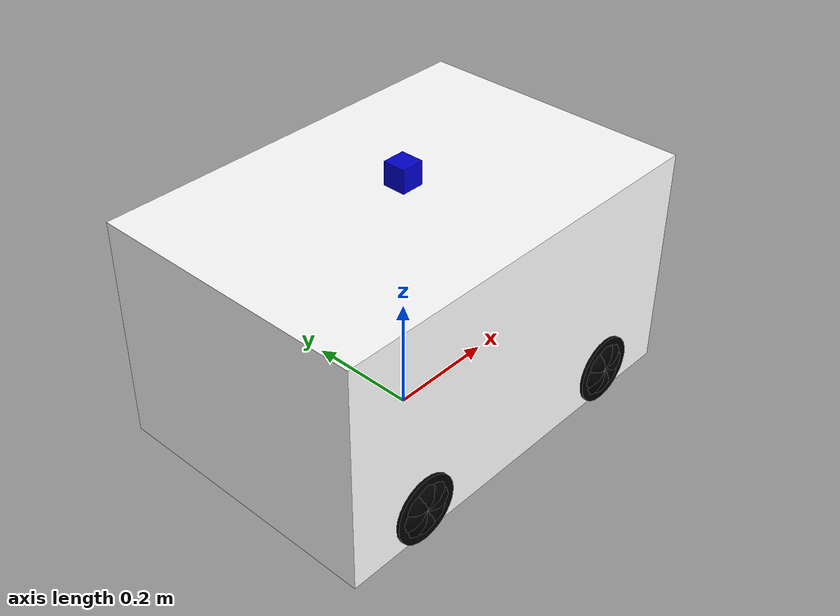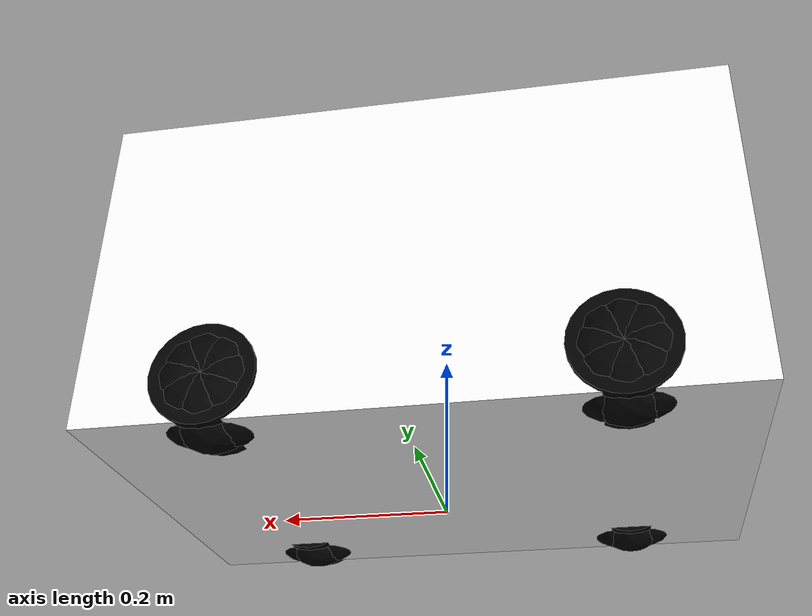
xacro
<?xml version="1.0"?>
<robot name="robot" xmlns:xacro="http://ros.org/wiki/xacro">
	<!-- General Macro -->
	<xacro:include filename="$(find config_robot)/urdf/lib/common.urdf.xacro" />
	<!-- Wheel Macro -->
	<xacro:include filename="$(find config_robot)/urdf/lib/wheel/mecanum_wheel.urdf.xacro" />
	<!-- Lidar Macro -->
	<xacro:include filename="$(find config_robot)/urdf/lib/sensor/block_lidar.urdf.xacro" />

	<!-- PROPERTY LIST -->
	<!--All units in m-kg-s-radians unit system -->
	<xacro:property name="M_PI_2" value="${pi/2.0}" />

	<!-- AGV Base -->
	<xacro:property name="agv_base_height" value="0.4" />
	<xacro:property name="agv_base_lift" value="0.025" />
	<xacro:property name="agv_base_width" value="0.495" />
	<xacro:property name="agv_base_length" value="0.73" />
	<xacro:property name="agv_base_mass" value="40" />
	<xacro:property name="agv_wheel_height" value="0.07825" />

	<!-- BASE-FOOTPRINT -->
	<!-- base_footprint is a fictitious link(frame) that is on the ground right below base_link origin -->
	<link name="base_footprint">
		<xacro:visual_cuboid length="${0.001}" width="${0.001}" height="${0.001}" />
	</link>

	<gazebo reference="base_footprint">
		<turnGravityOff>false</turnGravityOff>
	</gazebo>

	<!-- AGV_BASE_LINK -->
	<joint name="base_footprint_agv_base_joint" type="fixed">
		<origin xyz="0 0 ${agv_base_height/2+agv_base_lift}" rpy="0 0 0" />
		<parent link="base_footprint"/>
		<child link="agv_base_link" />
	</joint>

	<link name="agv_base_link">
		<xacro:inertia_cuboid mass="${agv_base_mass}" d="${agv_base_length}" w="${agv_base_width}"
													h="${agv_base_height}" xyz="0 0 ${-agv_base_height/2-agv_base_lift}" />
		<xacro:collision_cuboid length="${agv_base_length}" width="${agv_base_width}" height="${agv_base_height}" />
		<xacro:visual_cuboid length="${agv_base_length}" width="${agv_base_width}" height="${agv_base_height}" material="White" />
	</link>

	<!-- WHEELS -->
	<xacro:mecanum_wheel_a	name="wheel_front_left" parent="agv_base_link"
													xyz="0.22 0.21 ${-agv_base_height/2-agv_base_lift + agv_wheel_height}" rpy="${M_PI_2} 0 0" />
	<xacro:mecanum_wheel_b	name="wheel_front_right" parent="agv_base_link"
													xyz="0.22 -0.21 ${-agv_base_height/2-agv_base_lift + agv_wheel_height}" rpy="${-M_PI_2} 0 0" />
	<xacro:mecanum_wheel_b	name="wheel_back_left" parent="agv_base_link"
													xyz="-0.22 0.21 ${-agv_base_height/2-agv_base_lift + agv_wheel_height}" rpy="${M_PI_2} 0 0" />
	<xacro:mecanum_wheel_a	name="wheel_back_right" parent="agv_base_link"
													xyz="-0.22 -0.21 ${-agv_base_height/2-agv_base_lift + agv_wheel_height}" rpy="${-M_PI_2} 0 0" />

	<!-- AGV lidar -->
	<xacro:block_lidar name="agv_lidar" parent="base_footprint" xyz="0.0 0.0 0.45" rpy="0 0 ${pi}" />

	<gazebo>
		<plugin name="planar_move_controller" filename="libgazebo_ros_planar_move.so">
			<commandTopic>cmd_vel</commandTopic>
			<odometryFrame>odom</odometryFrame>
			<odometryTopic>odom</odometryTopic>
			<robotBaseFrame>base_footprint</robotBaseFrame>
			<odometryRate>60.0</odometryRate>
			<publishTF>true</publishTF>
		</plugin>
	</gazebo>
</robot>

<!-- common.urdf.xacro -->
<robot name="common" xmlns:xacro="http://ros.org/wiki/xacro">

	<material name="Black">
		<color rgba="0.0 0.0 0.0 1.0"/>
	</material>

	<material name="Red">
		<color rgba="0.8 0.0 0.0 1.0"/>
	</material>

	<material name="White">
		<color rgba="1.0 1.0 1.0 1.0"/>
	</material>

	<material name="Blue">
		<color rgba="0.0 0.0 0.8 1.0"/>
	</material>

  <!-- Macro for calculating inertia of cylinder -->
	<xacro:macro name="inertia_cylinder" params="mass radius length xyz:='0 0 0' rpy:='0 0 0'">
		<inertial>
			<origin xyz="${xyz}" rpy="${rpy}"/>
			<mass value="${mass}"/>
			<inertia	ixx="${mass*(3*radius*radius+length*length)/12}" ixy = "0" ixz = "0"
								iyy="${mass*(3*radius*radius+length*length)/12}" iyz = "0"
								izz="${mass*radius*radius/2}" />
		</inertial>
	</xacro:macro>

  <!-- Macro for calculating inertia of sphere -->
	<xacro:macro name="inertia_sphere" params="radius rho:=1000 xyz:='0 0 0' rpy:='0 0 0'">
		<xacro:property name="m" value="${4/3*rho*pi*radius**3}"/>
		<inertial>
			<origin xyz="${xyz}" rpy="${rpy}"/>
			<mass value="${m}"/>
			<inertia	ixx="${(2/5*m)*(radius**2)}" ixy="0" ixz="0"
								iyy="${(2/5*m)*(radius**2)}"  iyz="0"
								izz="${(2/5*m)*(radius**2)}" />
		</inertial>
	</xacro:macro>

	<!-- Macro for calculating inertia of cube -->
	<xacro:macro name="inertia_cuboid" params="mass w d h xyz:='0 0 0' rpy:='0 0 0'">
	<inertial>
		<origin xyz="${xyz}" rpy="${rpy}"/>
		<inertia	ixx="${mass*(h*h+d*d)/12}" ixy = "0" ixz = "0"
							iyy="${mass*(w*w+d*d)/12}" iyz = "0"
							izz="${mass*(w*w+h*h)/12}" />
		</inertial>
	</xacro:macro>

	<xacro:macro name="collision_cylinder" params="radius length xyz:='0 0 0' rpy:='0 0 0'">
		<collision>
			<origin xyz="${xyz}" rpy="${rpy}"/>
			<geometry>
				<cylinder radius="${radius}" length="${length}" />
			</geometry>
		</collision>
	</xacro:macro>

	<xacro:macro name="collision_sphere" params="radius xyz:='0 0 0' rpy:='0 0 0'">
		<collision>
			<origin xyz="${xyz}" rpy="${rpy}"/>
			<geometry>
				<sphere radius="${radius}"/>
			</geometry>
		</collision>
	</xacro:macro>

	<xacro:macro name="collision_cuboid" params="length width height xyz:='0 0 0' rpy:='0 0 0'">
		<collision>
			<origin xyz="0 0 0" rpy="0 0 0" />
			<geometry>
				<box size="${length} ${width} ${height}" />
			</geometry>
		</collision>
	</xacro:macro>

	<xacro:macro name="visual_sphere" params="radius xyz:='0 0 0' rpy:='0 0 0' material:='Black'">
		<visual>
			<origin xyz="${xyz}" rpy="${rpy}"/>
			<geometry>
				<sphere radius="${radius}"/>
			</geometry>
			<material name="${material}" />
		</visual>
	</xacro:macro>

	<xacro:macro name="visual_cylinder" params="radius length xyz:='0 0 0' rpy:='0 0 0' material:='Black'">
		<visual>
			<origin xyz="${xyz}" rpy="${rpy}"/>
			<geometry>
				<cylinder radius="${radius}" length="${length}" />
			</geometry>
			<material name="${material}" />
		</visual>
	</xacro:macro>

	<xacro:macro name="visual_cuboid" params="length width height xyz:='0 0 0' rpy:='0 0 0' material:='Black'">
		<visual>
			<origin xyz="0 0 0" rpy="0 0 0" />
			<geometry>
				<box size="${length} ${width} ${height}" />
			</geometry>
			<material name="${material}" />
		</visual>
	</xacro:macro>
</robot>

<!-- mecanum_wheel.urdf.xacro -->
<robot name="wheel" xmlns:xacro="http://ros.org/wiki/xacro">
  <xacro:macro name="roller" params="wheel_name num roller_angle N radius roller_bottom_offset">
		<xacro:property name="axis_offset" value="${roller_bottom_offset + radius}"/>
		<xacro:property name="angle" value="${2*num*N*pi}"/>

		<joint name="roller_${wheel_name}_${num}_joint" type="continuous">
			<origin xyz="${cos(angle)*axis_offset} ${-sin(angle)*axis_offset} 0" rpy="${roller_angle} 0.0 ${-2.0*num*pi*N}"/>
			<axis xyz="0 0 0" />
			<parent link="${wheel_name}"/>
			<child link="roller_${wheel_name}_${num}"/>
			<dynamics damping="1000000.0" friction="0.0" />
		</joint>

		<link name="roller_${wheel_name}_${num}">
			<xacro:visual_sphere rpy="0 0 0" radius="${radius}"/>
			<xacro:collision_sphere xyz="0 0 0" radius="${radius}"/>
			<xacro:inertia_sphere rpy="0 0 0" radius="${radius}"/>
		</link>
	</xacro:macro>

	<xacro:macro name="mecanum_wheel" params="wheel_name parent roller_angle xyz:='0 0 0' rpy:='0 0 0'">
		<xacro:property name="wheel_radius" value="0.07825"/>
		<xacro:property name="core_radius" value="${wheel_radius * 0.76}"/>
		<xacro:property name="length" value="0.085"/>
		<xacro:property name="roller_radius" value="0.05"/>
		<xacro:property name="mass" value="2.1"/>
		<xacro:property name="num_of_roller" value="${1.0/8.0}"/>

		<joint name="${wheel_name}_joint" type="continuous">
			<axis xyz="0 0 1" />
			<origin xyz="${xyz}" rpy="${rpy}" />
			<parent link="${parent}" />
			<child link="${wheel_name}" />
			<dynamics damping="1000000.0" friction="0.0" />
		</joint>

		<link name="${wheel_name}" type="wheel">
			<xacro:inertia_cylinder mass="${mass}" radius="${core_radius}" length="${length}" />
			<xacro:collision_cylinder radius="${core_radius}" length="${length}" />
			<xacro:visual_cylinder radius="${core_radius}" length="${length}" />
		</link>

		<xacro:roller	wheel_name="${name}" num="0" roller_angle="${roller_angle}" N="${num_of_roller}" radius="${roller_radius}"
									roller_bottom_offset="${-(wheel_radius - roller_radius)}" />
		<xacro:roller	wheel_name="${name}" num="1" roller_angle="${roller_angle}" N="${num_of_roller}" radius="${roller_radius}"
									roller_bottom_offset="${-(wheel_radius - roller_radius)}" />
		<xacro:roller	wheel_name="${name}" num="2" roller_angle="${roller_angle}" N="${num_of_roller}" radius="${roller_radius}"
									roller_bottom_offset="${-(wheel_radius - roller_radius)}" />
		<xacro:roller	wheel_name="${name}" num="3" roller_angle="${roller_angle}" N="${num_of_roller}" radius="${roller_radius}"
									roller_bottom_offset="${-(wheel_radius - roller_radius)}" />
		<xacro:roller	wheel_name="${name}" num="4" roller_angle="${roller_angle}" N="${num_of_roller}" radius="${roller_radius}"
									roller_bottom_offset="${-(wheel_radius - roller_radius)}" />
		<xacro:roller	wheel_name="${name}" num="5" roller_angle="${roller_angle}" N="${num_of_roller}" radius="${roller_radius}"
									roller_bottom_offset="${-(wheel_radius - roller_radius)}" />
		<xacro:roller	wheel_name="${name}" num="6" roller_angle="${roller_angle}" N="${num_of_roller}" radius="${roller_radius}"
									roller_bottom_offset="${-(wheel_radius - roller_radius)}" />
		<xacro:roller	wheel_name="${name}" num="7" roller_angle="${roller_angle}" N="${num_of_roller}" radius="${roller_radius}"
									roller_bottom_offset="${-(wheel_radius - roller_radius)}" />
	</xacro:macro>

  <xacro:macro name="mecanum_wheel_a" params="name parent xyz:='0 0 0' rpy:='0 0 0'">
		<xacro:mecanum_wheel wheel_name="${name}" parent="${parent}" xyz="${xyz}" rpy="${rpy}" roller_angle="${-pi/4.0}" />
  </xacro:macro>

	<xacro:macro name="mecanum_wheel_b" params="name parent xyz:='0 0 0' rpy:='0 0 0'">
		<xacro:mecanum_wheel wheel_name="${name}" parent="${parent}" xyz="${xyz}" rpy="${rpy}" roller_angle="${pi/4.0}" />
  </xacro:macro>
</robot>

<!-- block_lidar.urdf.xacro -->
<robot name="lidar" xmlns:xacro="http://ros.org/wiki/xacro">
	<!-- lidar -->
	<xacro:property name="lidar_size" value="0.041" />

	<xacro:macro name="lidar_gazebo" params="name">
		<gazebo reference="${name}">
			<sensor type="ray" name="${name}">
			<pose>${lidar_size/2} 0 0 0 0 0</pose>
			<visualize>false</visualize>
			<update_rate>40</update_rate>
			<ray>
				<scan>
					<horizontal>
						<samples>720</samples>
						<resolution>1</resolution>
						<min_angle>${-M_PI}</min_angle>
						<max_angle>${M_PI}</max_angle>
					</horizontal>
				</scan>
				<range>
					<min>0.15</min>
					<max>12.0</max>
					<resolution>0.001</resolution>
				</range>
			</ray>
			<plugin name="gazebo_ros_base_laser_controller" filename="libgazebo_ros_laser.so">
				<topicName>/scan_${name}</topicName>
				<frameName>${name}</frameName>
			</plugin>
    </sensor>

		</gazebo>
	</xacro:macro>

	<xacro:macro name="block_lidar" params="name parent xyz:='0 0 0' rpy:='0 0 0'">
		<joint name="${name}_joint" type="fixed">
			<origin xyz="${xyz}" rpy="${rpy}" />
			<parent link="${parent}" />
			<child link="${name}" />
		</joint>

		<link name="${name}">
			<xacro:inertia_cuboid mass="0.1" d="${lidar_size}" w="${lidar_size}" h="${lidar_size}" />
			<xacro:collision_cuboid length="${lidar_size}" width="${lidar_size}" height="${lidar_size}" />
			<xacro:visual_cuboid length="${lidar_size}" width="${lidar_size}" height="${lidar_size}"  material="Blue" />
		</link>
	</xacro:macro>
</robot>
